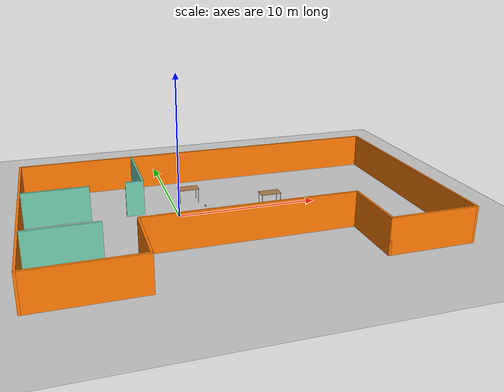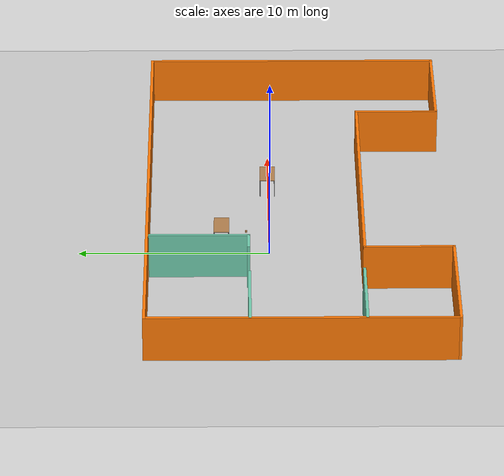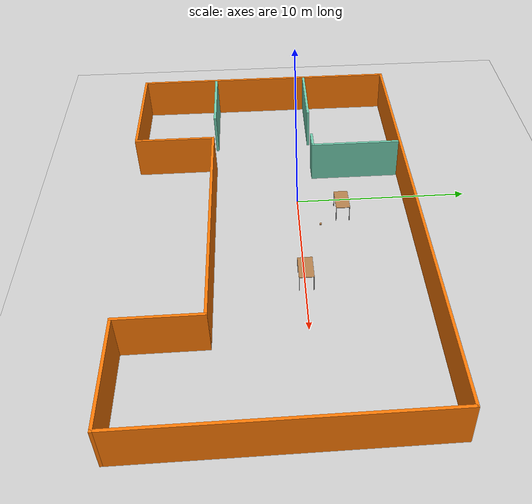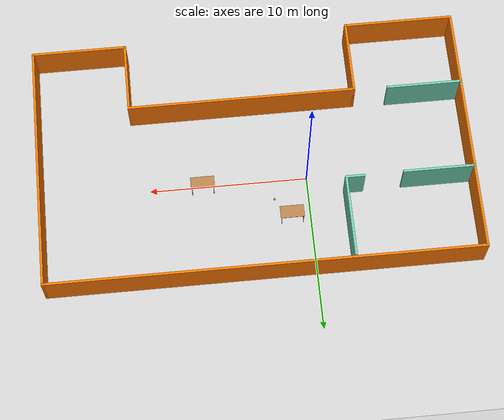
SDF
<sdf version="1.6">
 <world name="default">
  <plugin name="hello" filename="libhello.so"/>
  <light name="sun" type="directional">
   <pose>0 0 10 0 -0 0</pose>
   <diffuse>0.8 0.8 0.8 1</diffuse>
   <specular>0.2 0.2 0.2 1</specular>
   <attenuation>
    <range>1000</range>
    <constant>0.9</constant>
    <linear>0.01</linear>
    <quadratic>0.001</quadratic>
   </attenuation>
   <direction>-0.5 0.1 -0.9</direction>
  </light>
  <model name="ground_plane">
   <static>1</static>
   <link name="link">
    <collision name="collision">
     <geometry><plane><normal>0 0 1</normal><size>100 100</size></plane></geometry>
     <surface>
      <contact><collide_bitmask>65535</collide_bitmask></contact>
      <friction><ode><mu>100</mu><mu2>50</mu2></ode></friction>
     </surface>
    </collision>
    <visual name="visual">
     <cast_shadows>0</cast_shadows>
     <geometry><plane><normal>0 0 1</normal><size>100 100</size></plane></geometry>
     <material>
      <script><uri>file://media/materials/scripts/gazebo.material</uri><name>Gazebo/Grey</name></script>
     </material>
    </visual>
   </link>
  </model>
  <gravity>0 0 -9.8</gravity>
  <magnetic_field>6e-06 2.3e-05 -4.2e-05</magnetic_field>
  <atmosphere type="adiabatic"/>
  <physics name="default_physics" default="0" type="ode">
   <max_step_size>0.001</max_step_size>
   <real_time_factor>1</real_time_factor>
   <real_time_update_rate>1000</real_time_update_rate>
  </physics>
  <scene><ambient>0.4 0.4 0.4 1</ambient><background>0.7 0.7 0.7 1</background><shadows>1</shadows></scene>
  <spherical_coordinates>
   <surface_model>EARTH_WGS84</surface_model>
   <latitude_deg>0</latitude_deg>
   <longitude_deg>0</longitude_deg>
   <elevation>0</elevation>
   <heading_deg>0</heading_deg>
  </spherical_coordinates>
  <model name="model">
   <pose>3.21934 -1.54056 0 0 -0 0</pose>
   <link name="Wall_40">
    <collision name="Wall_40_Collision">
     <geometry><box><size>4.75 0.15 2.5</size></box></geometry>
     <pose>0 0 1.25 0 -0 0</pose>
    </collision>
    <visual name="Wall_40_Visual">
     <pose>0 0 1.25 0 -0 0</pose>
     <geometry><box><size>4.75 0.15 2.5</size></box></geometry>
     <material>
      <script><uri>file://media/materials/scripts/gazebo.material</uri><name>Gazebo/Grey</name></script>
      <ambient>0.996078 0.47451 0.0196078 1</ambient>
     </material>
     <meta><layer>0</layer></meta>
    </visual>
    <pose>-6.7 -5.625 0 0 -0 1.5708</pose>
   </link>
   <link name="Wall_42">
    <collision name="Wall_42_Collision">
     <geometry><box><size>4.5 0.15 2.5</size></box></geometry>
     <pose>0 0 1.25 0 -0 0</pose>
    </collision>
    <visual name="Wall_42_Visual">
     <pose>0 0 1.25 0 -0 0</pose>
     <geometry><box><size>4.5 0.15 2.5</size></box></geometry>
     <material>
      <script><uri>file://media/materials/scripts/gazebo.material</uri><name>Gazebo/Grey</name></script>
      <ambient>0.996078 0.47451 0.0196078 1</ambient>
     </material>
     <meta><layer>0</layer></meta>
    </visual>
    <pose>7.65 -5.5 0 0 0 -1.5708</pose>
   </link>
   <link name="Wall_49">
    <collision name="Wall_49_Collision">
     <geometry><box><size>7 0.15 2.5</size></box></geometry>
     <pose>0 0 1.25 0 -0 0</pose>
    </collision>
    <visual name="Wall_49_Visual">
     <pose>0 0 1.25 0 -0 0</pose>
     <geometry><box><size>7 0.15 2.5</size></box></geometry>
     <material>
      <script><uri>file://media/materials/scripts/gazebo.material</uri><name>Gazebo/Grey</name></script>
      <ambient>0.996078 0.47451 0.0196078 1</ambient>
     </material>
     <meta><layer>0</layer></meta>
    </visual>
    <pose>-10.125 -7.925 0 0 -0 3.14159</pose>
   </link>
   <link name="Wall_50">
    <collision name="Wall_50_Collision">
     <geometry><box><size>16 0.15 2.5</size></box></geometry>
     <pose>0 0 1.25 0 -0 0</pose>
    </collision>
    <visual name="Wall_50_Visual">
     <pose>0 0 1.25 0 -0 0</pose>
     <geometry><box><size>16 0.15 2.5</size></box></geometry>
     <material>
      <script><uri>file://media/materials/scripts/gazebo.material</uri><name>Gazebo/Grey</name></script>
      <ambient>0.996078 0.47451 0.0196078 1</ambient>
     </material>
     <meta><layer>0</layer></meta>
    </visual>
    <pose>-13.55 0 0 0 -0 1.5708</pose>
   </link>
   <link name="Wall_51">
    <collision name="Wall_51_Collision">
     <geometry><box><size>27.25 0.15 2.5</size></box></geometry>
     <pose>0 0 1.25 0 -0 0</pose>
    </collision>
    <visual name="Wall_51_Visual">
     <pose>0 0 1.25 0 -0 0</pose>
     <geometry><box><size>27.25 0.15 2.5</size></box></geometry>
     <material>
      <script><uri>file://media/materials/scripts/gazebo.material</uri><name>Gazebo/Grey</name></script>
      <ambient>0.996078 0.47451 0.0196078 1</ambient>
     </material>
     <meta><layer>0</layer></meta>
    </visual>
    <pose>0 7.925 0 0 -0 0</pose>
   </link>
   <link name="Wall_52">
    <collision name="Wall_52_Collision">
     <geometry><box><size>15.75 0.15 2.5</size></box></geometry>
     <pose>0 0 1.25 0 -0 0</pose>
    </collision>
    <visual name="Wall_52_Visual">
     <pose>0 0 1.25 0 -0 0</pose>
     <geometry><box><size>15.75 0.15 2.5</size></box></geometry>
     <material>
      <script><uri>file://media/materials/scripts/gazebo.material</uri><name>Gazebo/Grey</name></script>
      <ambient>0.996078 0.47451 0.0196078 1</ambient>
     </material>
     <meta><layer>0</layer></meta>
    </visual>
    <pose>13.55 0.125 0 0 0 -1.5708</pose>
   </link>
   <link name="Wall_55">
    <collision name="Wall_55_Collision">
     <geometry><box><size>6.05 0.15 2.5</size></box></geometry>
     <pose>0 0 1.25 0 -0 0</pose>
    </collision>
    <visual name="Wall_55_Visual">
     <pose>0 0 1.25 0 -0 0</pose>
     <geometry><box><size>6.05 0.15 2.5</size></box></geometry>
     <material>
      <script><uri>file://media/materials/scripts/gazebo.material</uri><name>Gazebo/Grey</name></script>
      <ambient>0.996078 0.47451 0.0196078 1</ambient>
     </material>
     <meta><layer>0</layer></meta>
    </visual>
    <pose>10.6 -7.675 0 0 -0 0</pose>
   </link>
   <link name="Wall_57">
    <collision name="Wall_57_Collision">
     <geometry><box><size>14.5 0.15 2.5</size></box></geometry>
     <pose>0 0 1.25 0 -0 0</pose>
    </collision>
    <visual name="Wall_57_Visual">
     <pose>0 0 1.25 0 -0 0</pose>
     <geometry><box><size>14.5 0.15 2.5</size></box></geometry>
     <material>
      <script><uri>file://media/materials/scripts/gazebo.material</uri><name>Gazebo/Grey</name></script>
      <ambient>0.996078 0.47451 0.0196078 1</ambient>
     </material>
     <meta><layer>0</layer></meta>
    </visual>
    <pose>0.475 -3.325 0 0 -0 0</pose>
   </link>
   <link name="Wall_63">
    <collision name="Wall_63_Collision">
     <geometry><box><size>4.75 0.15 2.5</size></box></geometry>
     <pose>0 0 1.25 0 -0 0</pose>
    </collision>
    <visual name="Wall_63_Visual">
     <pose>0 0 1.25 0 -0 0</pose>
     <geometry><box><size>4.75 0.15 2.5</size></box></geometry>
     <material>
      <script><uri>file://media/materials/scripts/gazebo.material</uri><name>Gazebo/Grey</name></script>
      <ambient>0.435294 0.796078 0.67451 1</ambient>
     </material>
     <meta><layer>0</layer></meta>
    </visual>
    <pose>-11.1821 -3.2534 0 0 -0 3.14159</pose>
   </link>
   <link name="Wall_67">
    <collision name="Wall_67_Collision">
     <geometry><box><size>4.5 0.15 2.5</size></box></geometry>
     <pose>0 0 1.25 0 -0 0</pose>
    </collision>
    <visual name="Wall_67_Visual">
     <pose>0 0 1.25 0 -0 0</pose>
     <geometry><box><size>4.5 0.15 2.5</size></box></geometry>
     <material>
      <script><uri>file://media/materials/scripts/gazebo.material</uri><name>Gazebo/Grey</name></script>
      <ambient>0.435294 0.796078 0.67451 1</ambient>
     </material>
     <meta><layer>0</layer></meta>
    </visual>
    <pose>-11.3274 2.61739 0 0 -0 0</pose>
   </link>
   <link name="Wall_69">
    <collision name="Wall_69_Collision">
     <geometry><box><size>1.25 0.15 2.5</size></box></geometry>
     <pose>0 0 1.25 0 -0 0</pose>
    </collision>
    <visual name="Wall_69_Visual">
     <pose>0 0 1.25 0 -0 0</pose>
     <geometry><box><size>1.25 0.15 2.5</size></box></geometry>
     <material>
      <script><uri>file://media/materials/scripts/gazebo.material</uri><name>Gazebo/Grey</name></script>
      <ambient>0.435294 0.796078 0.67451 1</ambient>
     </material>
     <meta><layer>0</layer></meta>
    </visual>
    <pose>-6.05738 2.65257 0 0 -0 0</pose>
   </link>
   <link name="Wall_71">
    <collision name="Wall_71_Collision">
     <geometry><box><size>5.25 0.15 2.5</size></box></geometry>
     <pose>0 0 1.25 0 -0 0</pose>
    </collision>
    <visual name="Wall_71_Visual">
     <pose>0 0 1.25 0 -0 0</pose>
     <geometry><box><size>5.25 0.15 2.5</size></box></geometry>
     <material>
      <script><uri>file://media/materials/scripts/gazebo.material</uri><name>Gazebo/Grey</name></script>
      <ambient>0.435294 0.796078 0.67451 1</ambient>
     </material>
     <meta><layer>0</layer></meta>
    </visual>
    <pose>-5.50738 5.20257 0 0 -0 1.5708</pose>
   </link>
   <static>1</static>
  </model>
  <model name="wood_cube_10cm">
   <link name="link">
    <pose>0 0 0.05 0 -0 0</pose>
    <inertial>
     <mass>0.5167</mass>
     <inertia>
      <ixx>0.000861167</ixx>
      <ixy>0</ixy>
      <ixz>0</ixz>
      <iyy>0.000861167</iyy>
      <iyz>0</iyz>
      <izz>0.000861167</izz>
     </inertia>
    </inertial>
    <collision name="collision">
     <geometry><box><size>0.1 0.1 0.1</size></box></geometry>
     <surface>
      <contact>
       <poissons_ratio>0.347</poissons_ratio>
       <elastic_modulus>8.8e+09</elastic_modulus>
       <ode><kp>100000</kp><kd>100</kd><max_vel>100</max_vel><min_depth>0.001</min_depth></ode>
      </contact>
      <friction>
       <torsional>
        <coefficient>1</coefficient>
        <use_patch_radius>0</use_patch_radius>
        <surface_radius>0.01</surface_radius>
       </torsional>
      </friction>
     </surface>
    </collision>
    <visual name="visual">
     <geometry><box><size>0.1 0.1 0.1</size></box></geometry>
     <material>
      <script><uri>file://media/materials/scripts/gazebo.material</uri><name>Gazebo/Wood</name></script>
     </material>
    </visual>
   </link>
   <pose>2.17762 1.21583 0 0 -0 0</pose>
  </model>
  <model name="table">
   <static>1</static>
   <link name="link">
    <collision name="surface">
     <pose>0 0 1 0 -0 0</pose>
     <geometry><box><size>1.5 0.8 0.03</size></box></geometry>
     <surface><friction><ode><mu>0.6</mu><mu2>0.6</mu2></ode></friction></surface>
    </collision>
    <visual name="visual1">
     <pose>0 0 1 0 -0 0</pose>
     <geometry><box><size>1.5 0.8 0.03</size></box></geometry>
     <material>
      <script><uri>file://media/materials/scripts/gazebo.material</uri><name>Gazebo/Wood</name></script>
     </material>
    </visual>
    <collision name="front_left_leg">
     <pose>0.68 0.38 0.5 0 -0 0</pose>
     <geometry><cylinder><radius>0.02</radius><length>1</length></cylinder></geometry>
    </collision>
    <visual name="front_left_leg">
     <pose>0.68 0.38 0.5 0 -0 0</pose>
     <geometry><cylinder><radius>0.02</radius><length>1</length></cylinder></geometry>
     <material>
      <script><uri>file://media/materials/scripts/gazebo.material</uri><name>Gazebo/Grey</name></script>
     </material>
    </visual>
    <collision name="front_right_leg">
     <pose>0.68 -0.38 0.5 0 -0 0</pose>
     <geometry><cylinder><radius>0.02</radius><length>1</length></cylinder></geometry>
    </collision>
    <visual name="front_right_leg">
     <pose>0.68 -0.38 0.5 0 -0 0</pose>
     <geometry><cylinder><radius>0.02</radius><length>1</length></cylinder></geometry>
     <material>
      <script><uri>file://media/materials/scripts/gazebo.material</uri><name>Gazebo/Grey</name></script>
     </material>
    </visual>
    <collision name="back_right_leg">
     <pose>-0.68 -0.38 0.5 0 -0 0</pose>
     <geometry><cylinder><radius>0.02</radius><length>1</length></cylinder></geometry>
    </collision>
    <visual name="back_right_leg">
     <pose>-0.68 -0.38 0.5 0 -0 0</pose>
     <geometry><cylinder><radius>0.02</radius><length>1</length></cylinder></geometry>
     <material>
      <script><uri>file://media/materials/scripts/gazebo.material</uri><name>Gazebo/Grey</name></script>
     </material>
    </visual>
    <collision name="back_left_leg">
     <pose>-0.68 0.38 0.5 0 -0 0</pose>
     <geometry><cylinder><radius>0.02</radius><length>1</length></cylinder></geometry>
    </collision>
    <visual name="back_left_leg">
     <pose>-0.68 0.38 0.5 0 -0 0</pose>
     <geometry><cylinder><radius>0.02</radius><length>1</length></cylinder></geometry>
     <material>
      <script><uri>file://media/materials/scripts/gazebo.material</uri><name>Gazebo/Grey</name></script>
     </material>
    </visual>
   </link>
   <pose>6.63268 0.051489 0 0 -0 0</pose>
  </model>
  <model name="table_clone">
   <static>1</static>
   <link name="link">
    <collision name="surface">
     <pose>0 0 1 0 -0 0</pose>
     <geometry><box><size>1.5 0.8 0.03</size></box></geometry>
     <surface><friction><ode><mu>0.6</mu><mu2>0.6</mu2></ode></friction></surface>
    </collision>
    <visual name="visual1">
     <pose>0 0 1 0 -0 0</pose>
     <geometry><box><size>1.5 0.8 0.03</size></box></geometry>
     <material>
      <script><uri>file://media/materials/scripts/gazebo.material</uri><name>Gazebo/Wood</name></script>
     </material>
    </visual>
    <collision name="front_left_leg">
     <pose>0.68 0.38 0.5 0 -0 0</pose>
     <geometry><cylinder><radius>0.02</radius><length>1</length></cylinder></geometry>
    </collision>
    <visual name="front_left_leg">
     <pose>0.68 0.38 0.5 0 -0 0</pose>
     <geometry><cylinder><radius>0.02</radius><length>1</length></cylinder></geometry>
     <material>
      <script><uri>file://media/materials/scripts/gazebo.material</uri><name>Gazebo/Grey</name></script>
     </material>
    </visual>
    <collision name="front_right_leg">
     <pose>0.68 -0.38 0.5 0 -0 0</pose>
     <geometry><cylinder><radius>0.02</radius><length>1</length></cylinder></geometry>
    </collision>
    <visual name="front_right_leg">
     <pose>0.68 -0.38 0.5 0 -0 0</pose>
     <geometry><cylinder><radius>0.02</radius><length>1</length></cylinder></geometry>
     <material>
      <script><uri>file://media/materials/scripts/gazebo.material</uri><name>Gazebo/Grey</name></script>
     </material>
    </visual>
    <collision name="back_right_leg">
     <pose>-0.68 -0.38 0.5 0 -0 0</pose>
     <geometry><cylinder><radius>0.02</radius><length>1</length></cylinder></geometry>
    </collision>
    <visual name="back_right_leg">
     <pose>-0.68 -0.38 0.5 0 -0 0</pose>
     <geometry><cylinder><radius>0.02</radius><length>1</length></cylinder></geometry>
     <material>
      <script><uri>file://media/materials/scripts/gazebo.material</uri><name>Gazebo/Grey</name></script>
     </material>
    </visual>
    <collision name="back_left_leg">
     <pose>-0.68 0.38 0.5 0 -0 0</pose>
     <geometry><cylinder><radius>0.02</radius><length>1</length></cylinder></geometry>
    </collision>
    <visual name="back_left_leg">
     <pose>-0.68 0.38 0.5 0 -0 0</pose>
     <geometry><cylinder><radius>0.02</radius><length>1</length></cylinder></geometry>
     <material>
      <script><uri>file://media/materials/scripts/gazebo.material</uri><name>Gazebo/Grey</name></script>
     </material>
    </visual>
   </link>
   <pose>1.2045 2.51637 0 0 -0 0</pose>
  </model>
  <plugin filename="libcollision_map_creator.so" name="collision_map_creator"/>
 </world>
</sdf>
